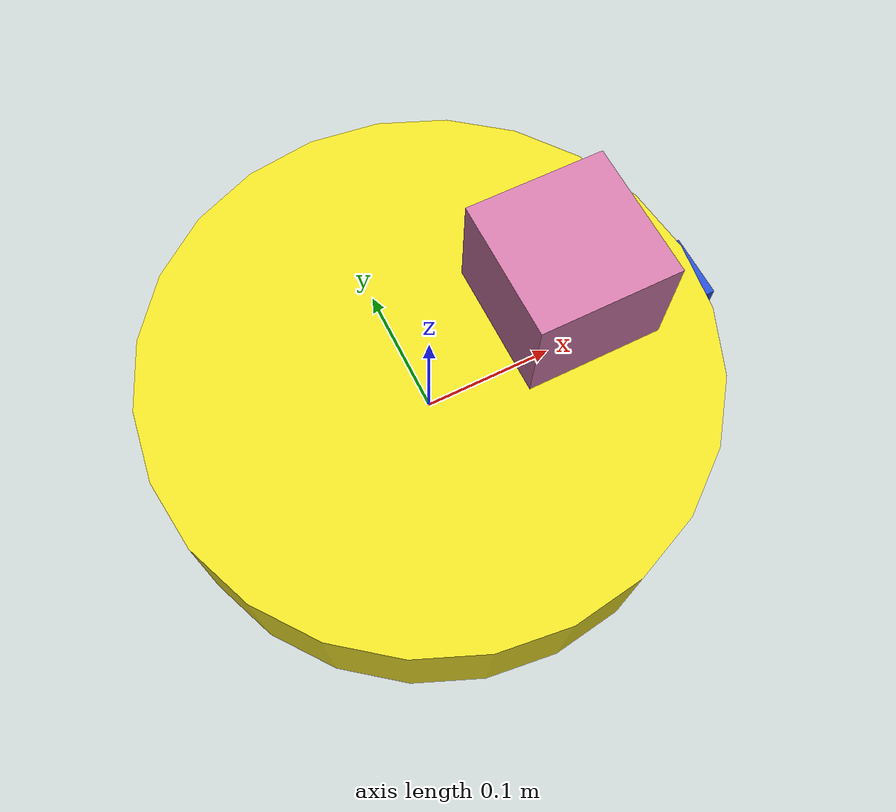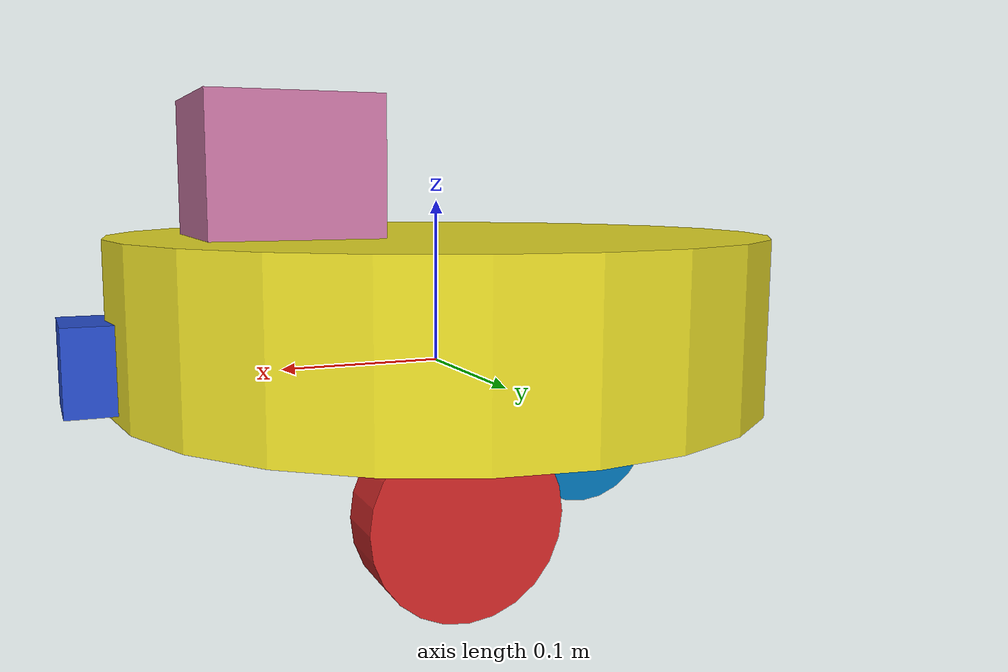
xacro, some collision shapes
<?xml version='1.0'?>

<robot name="my_bot" xmlns:xacro="http://www.ros.org/wiki/xacro">
  <xacro:include filename="$(find my_bot)/urdf/my_bot.gazebo" />
  <link name="robot_footprint"></link>

  <joint name="robot_footprint_joint" type="fixed">
    <origin xyz="0 0 0" rpy="0 0 0" />
    <parent link="robot_footprint"/>
    <child link="chassis" />
  </joint>

  <link name='chassis'>
    <pose>0 0 0.1 0 0 0</pose>

    <inertial>
      <mass value="10.0"/>
      <origin xyz="0 0 0.01" rpy=" 0 0 0"/>
      <inertia
          ixx="0.1" ixy="0" ixz="0"
          iyy="0.1" iyz="0"
          izz="0.1"
      />
    </inertial>

    <collision name='collision'>
      <origin xyz="0 0 0" rpy=" 0 0 0"/>
      <geometry>
        <cylinder length="0.1" radius="0.2"/>
      </geometry>
    </collision>

    <visual name='chassis_visual'>
      <origin xyz="0 0 0.03" rpy=" 0 0 0"/>
      <geometry>
        <cylinder length="0.1" radius="0.2"/>
      </geometry>
    </visual>

  </link>

  <link name='left_wheel'>
    <inertial>
      <mass value="3.0"/>
      <origin xyz="0 0 0" rpy=" 0 1.5707 1.5707"/>
      <inertia
          ixx="0.1" ixy="0" ixz="0"
          iyy="0.1" iyz="0"
          izz="0.1"
      />
    </inertial>
    <collision>
      <origin xyz="0 0 0" rpy=" 0 1.5707 1.5707"/>
      <geometry>
        <cylinder length="0.03" radius="0.05"/>
      </geometry>
    </collision>

	<visual>
      <origin xyz="0 0 0" rpy=" 0 1.5707 1.5707"/>
      <geometry>
        <cylinder length="0.03" radius="0.05"/>
      </geometry>
    </visual>
  </link>

   <link name='right_wheel'>
	<inertial>
      <mass value="3.0"/>
      <origin xyz="0 0 0" rpy=" 0 1.5707 1.5707"/>
      <inertia
          ixx="0.1" ixy="0" ixz="0"
          iyy="0.1" iyz="0"
          izz="0.1"
      />
    </inertial>
	<collision>
      <origin xyz="0 0 0" rpy=" 0 1.5707 1.5707"/>
      <geometry>
        <cylinder length="0.03" radius="0.05"/>
      </geometry>
    </collision>

	<visual>
      <origin xyz="0 0 0" rpy=" 0 1.5707 1.5707"/>
      <geometry>
        <cylinder length="0.03" radius="0.05"/>
      </geometry>
    </visual>
  </link>

  <link name='back_wheel'>
	<inertial>
      <mass value="3.0"/>
      <origin xyz="0 0 0" rpy=" 0 1.5707 1.5707"/>
      <inertia
          ixx="0.1" ixy="0" ixz="0"
          iyy="0.1" iyz="0"
          izz="0.1"
      />
    </inertial>
	<collision>
      <origin xyz="0 0 0" rpy=" 0 1.5707 1.5707"/>
      <geometry>
        <cylinder length="0.03" radius="0.05"/>
      </geometry>
    </collision>

	<visual>
      <origin xyz="0 0 0" rpy=" 0 1.5707 1.5707"/>
      <geometry>
        <cylinder length="0.03" radius="0.05"/>
      </geometry>
    </visual>
  </link>

  <link name='camera'>
    <inertial>
      <mass value="0.1"/>
      <origin xyz="0 0 0" rpy=" 0 0 0"/>
      <inertia
          ixx="1e-6" ixy="0" ixz="0"
          iyy="1e-6" iyz="0"
          izz="1e-6"
      />
    </inertial>
	<collision>
      <origin xyz="0 0 0" rpy=" 0 0 0"/>
      <geometry>
        <box size="0.05 0.05 0.05"/>
      </geometry>
    </collision>

	<visual>
      <origin xyz="0 0 0" rpy=" 0 0 0"/>
      <geometry>
        <box size="0.05 0.05 0.05"/>
      </geometry>
    </visual>
  </link>

  <link name='hokuyo'>
    <inertial>
      <mass value="0.1"/>
      <origin xyz="0 0 0" rpy=" 0 0 0"/>
      <inertia
          ixx="1e-6" ixy="0" ixz="0"
          iyy="1e-6" iyz="0"
          izz="1e-6"
      />
    </inertial>
	<collision>
      <origin xyz="0 0 0" rpy=" 0 0 0"/>
      <geometry>
        <box size="0.1 0.1 0.1"/>
      </geometry>
    </collision>

	<visual>
      <origin xyz="0 0 0" rpy=" 0 0 0"/>
      <geometry>
        <mesh filename="package://my_bot/meshes/hokuyo.dae" />
      </geometry>
    </visual>
  </link>
   <joint type="continuous" name="left_wheel_hinge">
    <origin xyz="0.05 0.15 -0.05" rpy="0 0 0"/>
    <child link="left_wheel"/>
    <parent link="chassis"/>
    <axis xyz="0 1 0" rpy="0 0 0"/>
    <limit effort="10000" velocity="1000"/>
    <joint_properties damping="1.0" friction="1.0"/>
  </joint>

  <joint type="continuous" name="right_wheel_hinge">
    <origin xyz="0.05 -0.15 -0.05" rpy="0 0 0"/>
    <child link="right_wheel"/>
    <parent link="chassis"/>
    <axis xyz="0 1 0" rpy="0 0 0"/>
    <limit effort="10000" velocity="1000"/>
    <joint_properties damping="1.0" friction="1.0"/>
  </joint>

  <joint type="continuous" name="back_wheel_hinge">
    <origin xyz="-0.1 0 -0.05" rpy="0 0 0"/>
    <child link="back_wheel"/>
    <parent link="chassis"/>
    <axis xyz="0 1 0" rpy="0 0 0"/>
    <limit effort="10000" velocity="1000"/>
    <joint_properties damping="1.0" friction="1.0"/>
  </joint>

  <joint type="fixed" name="camera_joint">
    <origin xyz="0.2 0 0.01" rpy="0 0 0"/>
    <child link="camera"/>
    <parent link="chassis"/>
  </joint>
  <joint type="fixed" name="hokuyo_joint">
    <origin xyz="0.1 0 0.11" rpy="0 0 0"/>
    <child link="hokuyo"/>
    <parent link="chassis"/>
  </joint>
</robot>
